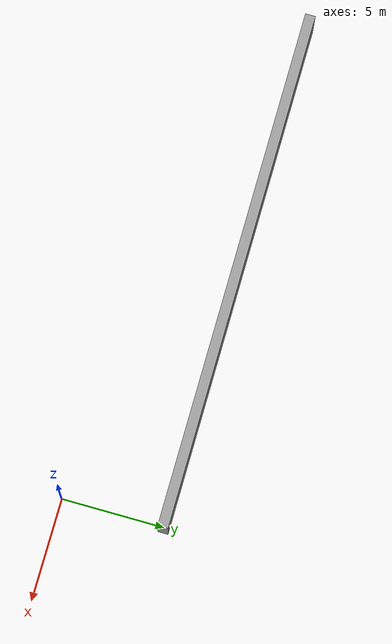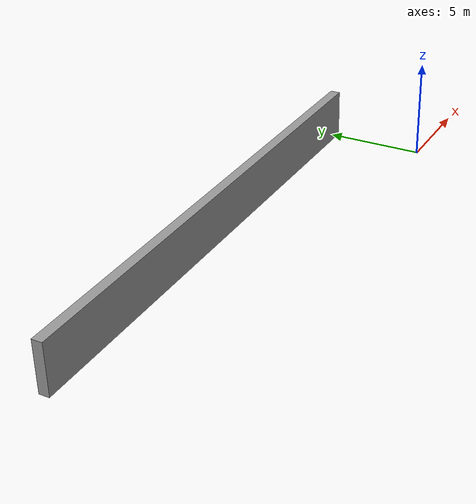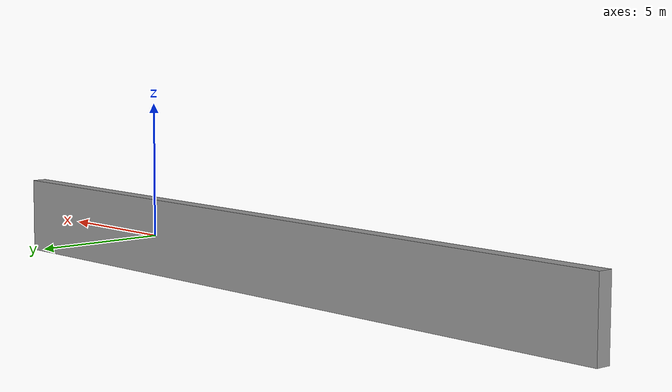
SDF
<?xml version='1.0'?>
<sdf version='1.6'>
  <model name='wall_25'>
    <pose frame=''>-12.5 5 0 0 -0 0</pose>
    <link name='Wall_8'>
      <collision name='Wall_8_Collision'>
        <geometry>
          <box>
            <size>25.5 0.5 2.5</size>
          </box>
        </geometry>
        <pose frame=''>0 0 1.25 0 -0 0</pose>
      </collision>
      <visual name='Wall_8_Visual'>
        <pose frame=''>0 0 1.25 0 -0 0</pose>
        <geometry>
          <box>
            <size>25.5 0.5 2.5</size>
          </box>
        </geometry>
        <material>
          <script>
            <uri>file://media/materials/scripts/gazebo.material</uri>
            <name>Gazebo/Grey</name>
          </script>
          <ambient>1 1 1 1</ambient>
        </material>
        <meta>
          <layer>0</layer>
        </meta>
      </visual>
      <pose frame=''>0 0 0 0 -0 0</pose>
    </link>
    <static>1</static>
  </model>
</sdf>
